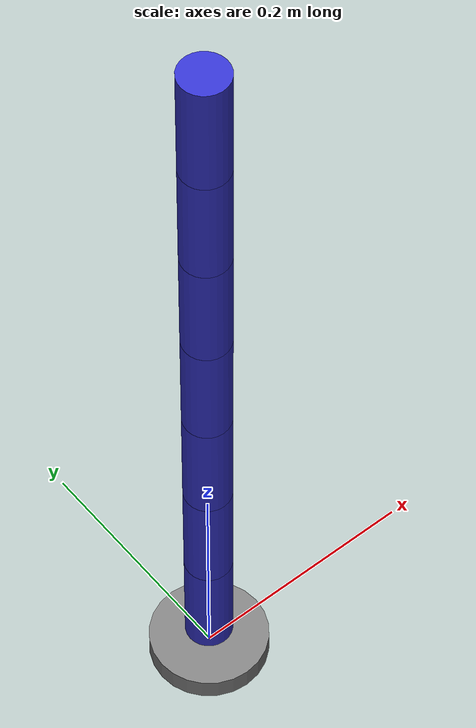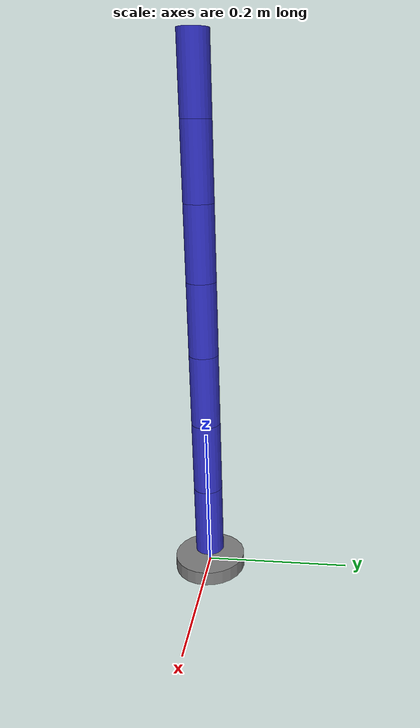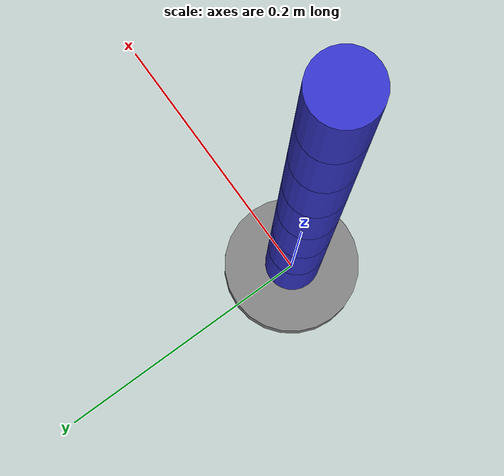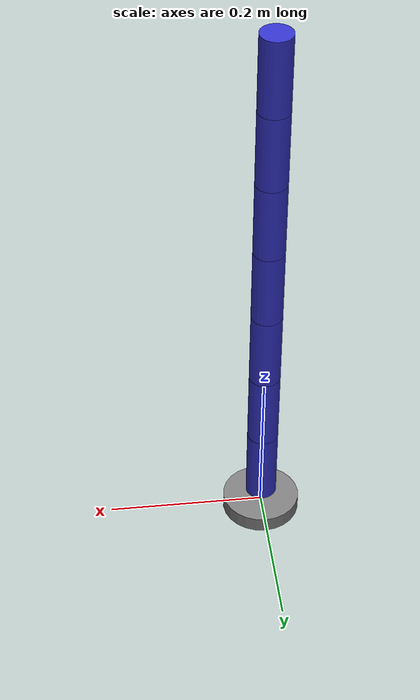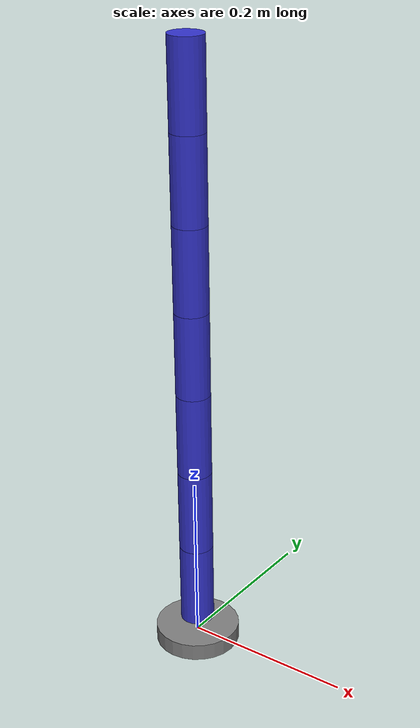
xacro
<?xml version="1.0"?>
<robot xmlns:xacro="http://ros.org/wiki/xacro" name="primo_arm">

  <!-- Parameters -->
  <xacro:property name="link_length" value="0.1"/>
  <xacro:property name="link_radius" value="0.02"/>

  <!-- Colors -->
  <material name="gray">
    <color rgba="0.5 0.5 0.5 1.0"/>
  </material>
  <material name="blue">
    <color rgba="0.2 0.2 0.8 1.0"/>
  </material>

  <!-- Macro for link and joint -->
  <xacro:macro name="dynamixel_link" params="index parent child length radius xyz rpy axis">
    <joint name="joint_${index}" type="revolute">
      <parent link="${parent}"/>
      <child link="${child}"/>
      <origin xyz="${xyz}" rpy="${rpy}"/>
      <axis xyz="${axis}"/>
      <limit effort="1.0" lower="-3.14" upper="3.14" velocity="1.0"/>
    </joint>

    <link name="${child}">
      <inertial>
        <mass value="0.1"/>
        <origin xyz="0 0 ${length/2}" rpy="0 0 0"/>
        <inertia ixx="0.0001" ixy="0.0" ixz="0.0" iyy="0.0001" iyz="0.0" izz="0.0001"/>
      </inertial>
      <visual>
        <origin xyz="0 0 ${length/2}" rpy="0 0 0"/>
        <geometry>
          <cylinder length="${length}" radius="${radius}"/>
        </geometry>
        <material name="blue"/>
      </visual>
      <collision>
        <origin xyz="0 0 ${length/2}" rpy="0 0 0"/>
        <geometry>
          <cylinder length="${length}" radius="${radius}"/>
        </geometry>
      </collision>
    </link>
  </xacro:macro>

  <!-- Base link -->
  <link name="base_link">
    <visual>
      <geometry>
        <cylinder length="0.02" radius="0.05"/>
      </geometry>
      <material name="gray"/>
    </visual>
  </link>

  <!-- Arm chain -->
  <xacro:dynamixel_link index="1" parent="base_link" child="link_1" length="${link_length}" radius="${link_radius}" xyz="0 0 0.02" rpy="0 0 0" axis="0 0 1"/>
  <xacro:dynamixel_link index="2" parent="link_1" child="link_2" length="${link_length}" radius="${link_radius}" xyz="0 0 ${link_length}" rpy="0 0 0" axis="1 0 0"/>
  <xacro:dynamixel_link index="3" parent="link_2" child="link_3" length="${link_length}" radius="${link_radius}" xyz="0 0 ${link_length}" rpy="0 0 0" axis="0 1 0"/>
  <xacro:dynamixel_link index="4" parent="link_3" child="link_4" length="${link_length}" radius="${link_radius}" xyz="0 0 ${link_length}" rpy="0 0 0" axis="1 0 0"/>
  <xacro:dynamixel_link index="5" parent="link_4" child="link_5" length="${link_length}" radius="${link_radius}" xyz="0 0 ${link_length}" rpy="0 0 0" axis="0 1 0"/>
  <xacro:dynamixel_link index="6" parent="link_5" child="link_6" length="${link_length}" radius="${link_radius}" xyz="0 0 ${link_length}" rpy="0 0 0" axis="1 0 0"/>
  <xacro:dynamixel_link index="7" parent="link_6" child="link_7" length="${link_length}" radius="${link_radius}" xyz="0 0 ${link_length}" rpy="0 0 0" axis="0 1 0"/>

</robot>
